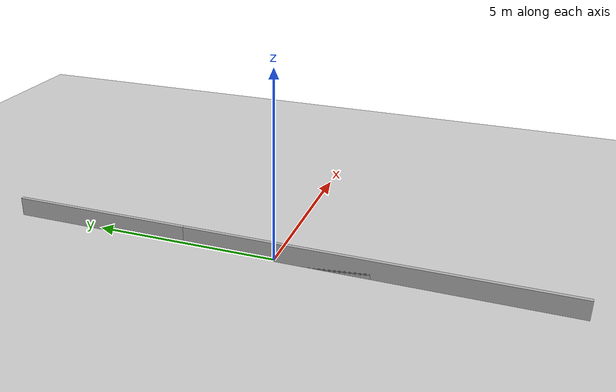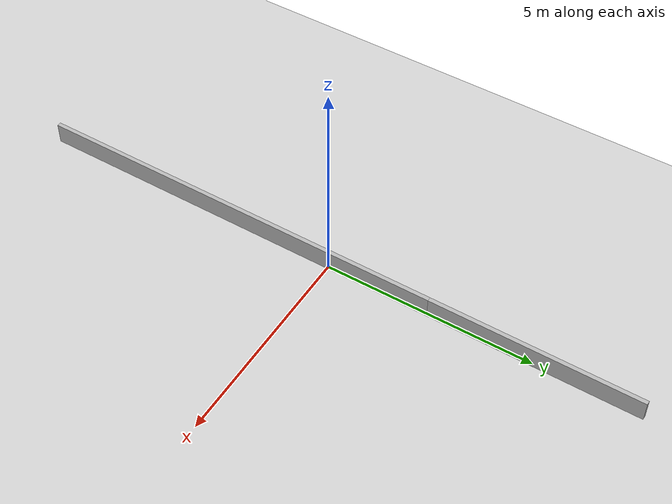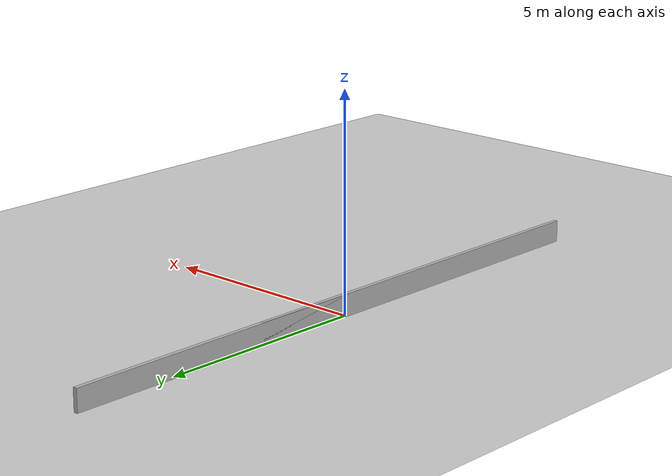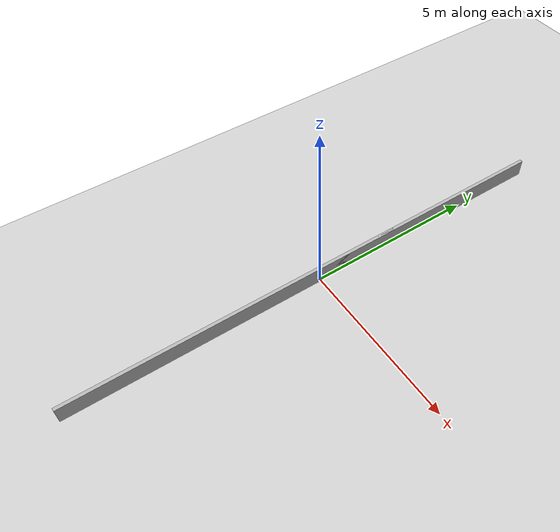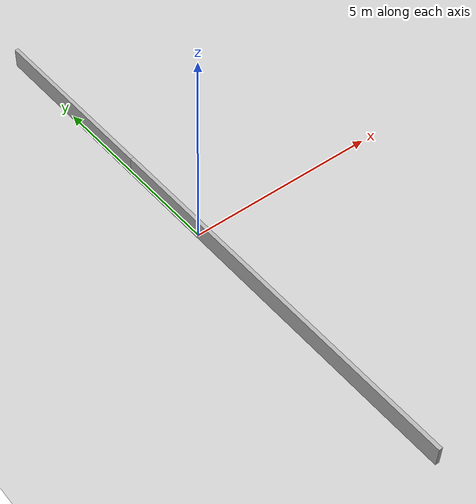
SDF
<sdf version="1.7">
  <world name="turtlebot3_navigation_world">
    <!-- Sun Light -->
    <light name="sun" type="directional">
      <pose>0 0 10 0 -0 0</pose>
      <diffuse>0.8 0.8 0.8 1</diffuse>
      <specular>0.2 0.2 0.2 1</specular>
      <attenuation>
        <range>1000</range>
        <constant>0.9</constant>
        <linear>0.01</linear>
        <quadratic>0.001</quadratic>
      </attenuation>
      <direction>-0.5 0.1 -0.9</direction>
    </light>

    <!-- Ground Plane -->
    <model name="ground_plane">
      <static>1</static>
      <link name="link">
        <collision name="collision">
          <geometry>
            <plane>
              <normal>0 0 1</normal>
              <size>100 100</size>
            </plane>
          </geometry>
          <surface>
            <contact>
              <collide_bitmask>65535</collide_bitmask>
            </contact>
          </surface>
        </collision>
        <visual name="visual">
          <geometry>
            <plane>
              <normal>0 0 1</normal>
              <size>100 100</size>
            </plane>
          </geometry>
        </visual>
      </link>
    </model>

    <!-- Left Boundary Wall -->
    <model name="left_wall">
      <pose>0 2.5 0 0 0 0</pose>
      <link name="link">
        <collision name="collision">
          <geometry>
            <box>
              <size>0.1 10 1</size>
            </box>
          </geometry>
        </collision>
        <visual name="visual">
          <geometry>
            <box>
              <size>0.1 10 1</size>
            </box>
          </geometry>
          <material>
            <ambient>0.7 0.7 0.7 1</ambient>
            <diffuse>0.7 0.7 0.7 1</diffuse>
            <specular>0.1 0.1 0.1 1</specular>
          </material>
        </visual>
      </link>
    </model>

    <!-- Right Boundary Wall -->
    <model name="right_wall">
      <pose>0 -2.5 0 0 0 0</pose>
      <link name="link">
        <collision name="collision">
          <geometry>
            <box>
              <size>0.1 10 1</size>
            </box>
          </geometry>
        </collision>
        <visual name="visual">
          <geometry>
            <box>
              <size>0.1 10 1</size>
            </box>
          </geometry>
          <material>
            <ambient>0.7 0.7 0.7 1</ambient>
            <diffuse>0.7 0.7 0.7 1</diffuse>
            <specular>0.1 0.1 0.1 1</specular>
          </material>
        </visual>
      </link>
    </model>

    <!-- Path Line (Center Path for Robot to Follow) -->
    <model name="path_line">
      <pose>0 0 0.05 0 0 0</pose>
      <link name="link">
        <collision name="collision">
          <geometry>
            <box>
              <size>0.05 10 0.1</size>
            </box>
          </geometry>
        </collision>
        <visual name="visual">
          <geometry>
            <box>
              <size>0.05 10 0.1</size>
            </box>
          </geometry>
          <material>
            <ambient>0 1 0 1</ambient>
            <diffuse>0 1 0 1</diffuse>
            <specular>0.1 0.1 0.1 1</specular>
          </material>
        </visual>
      </link>
    </model>

    <!-- Gravity and other world settings -->
    <gravity>0 0 -9.8</gravity>
    <physics type="ode">
      <max_step_size>0.001</max_step_size>
      <real_time_factor>1.0</real_time_factor>
      <real_time_update_rate>1000</real_time_update_rate>
    </physics>
    <scene>
      <ambient>0.4 0.4 0.4 1</ambient>
      <background>0.7 0.7 0.7 1</background>
    </scene>
  </world>
</sdf>
